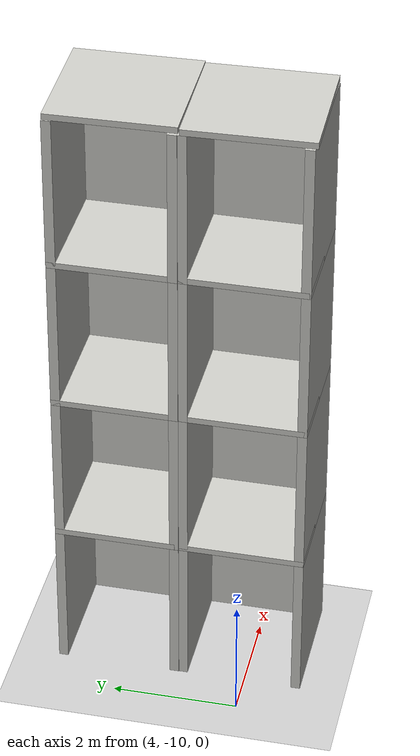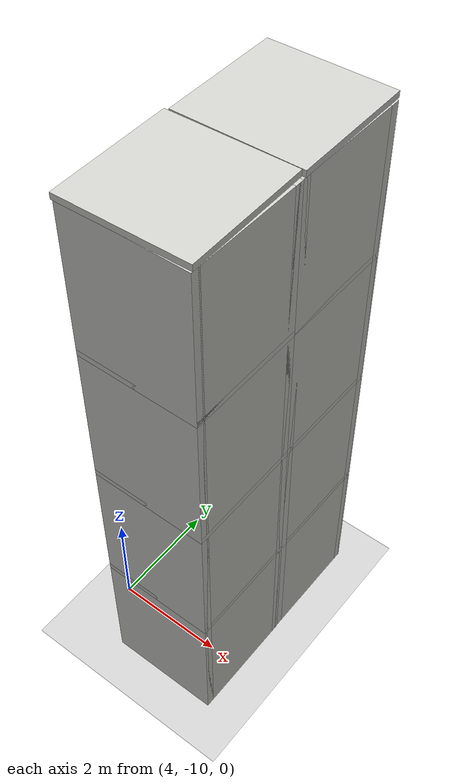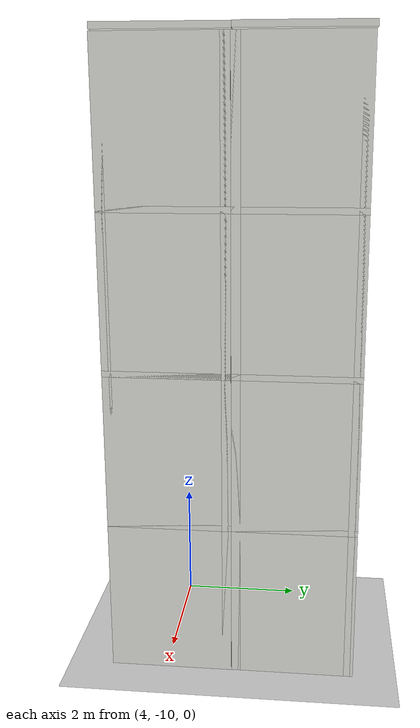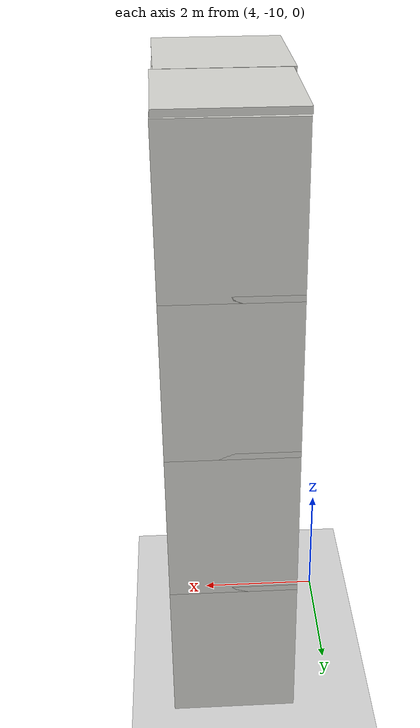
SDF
<sdf version="1.7">
 <world name="default">
  <model name="ground_plane">
   <static>1</static>
   <link name="link">
    <collision name="collision">
     <geometry><plane><normal>0 0 1</normal><size>100 100</size></plane></geometry>
     <surface>
      <contact><collide_bitmask>65535</collide_bitmask></contact>
      <friction><ode><mu>100</mu><mu2>50</mu2></ode></friction>
     </surface>
    </collision>
    <visual name="visual">
     <cast_shadows>0</cast_shadows>
     <geometry><plane><normal>0 0 1</normal><size>100 100</size></plane></geometry>
     <material>
      <script><uri>file://media/materials/scripts/gazebo.material</uri><name>Gazebo/Grey</name></script>
     </material>
    </visual>
   </link>
  </model>
  <model name="twin_4th_building_clone_clone_2">
   <link name="Floor_1">
    <pose>-1.9225 -0.6325 2.5 0 -0 0</pose>
    <visual name="Floor_1_Visual">
     <pose>0 0 0.05 0 -0 0</pose>
     <geometry><box><size>2 2 0.1</size></box></geometry>
     <material>
      <script><uri>file://media/materials/scripts/gazebo.material</uri><name>Gazebo/CeilingTiled</name></script>
      <ambient>1 1 1 1</ambient>
      <shader type="pixel"/>
      <emissive>0 0 0 1</emissive>
     </material>
     <meta><layer>1</layer></meta>
    </visual>
    <collision name="Floor_1_Collision">
     <pose>0 0 0.05 0 -0 0</pose>
     <geometry><box><size>2 2 0.1</size></box></geometry>
     <surface>
      <friction>
       <ode><mu>1</mu><mu2>1</mu2><fdir1>0 0 0</fdir1><slip1>0</slip1><slip2>0</slip2></ode>
       <torsional>
        <coefficient>1</coefficient>
        <patch_radius>0</patch_radius>
        <surface_radius>0</surface_radius>
        <use_patch_radius>1</use_patch_radius>
        <ode><slip>0</slip></ode>
       </torsional>
      </friction>
      <bounce><restitution_coefficient>0</restitution_coefficient><threshold>1e+06</threshold></bounce>
      <contact>
       <collide_without_contact>0</collide_without_contact>
       <collide_without_contact_bitmask>1</collide_without_contact_bitmask>
       <collide_bitmask>1</collide_bitmask>
       <ode>
        <soft_cfm>0</soft_cfm>
        <soft_erp>0.2</soft_erp>
        <kp>1e+13</kp>
        <kd>1</kd>
        <max_vel>0.01</max_vel>
        <min_depth>0</min_depth>
       </ode>
       <bullet>
        <split_impulse>1</split_impulse>
        <split_impulse_penetration_threshold>-0.01</split_impulse_penetration_threshold>
        <soft_cfm>0</soft_cfm>
        <soft_erp>0.2</soft_erp>
        <kp>1e+13</kp>
        <kd>1</kd>
       </bullet>
      </contact>
     </surface>
    </collision>
   </link>
   <link name="Floor_10">
    <pose>-1.9225 -0.6325 7.5 0 -0 0</pose>
    <visual name="Floor_10_Visual">
     <pose>0 0 0.05 0 -0 0</pose>
     <geometry><box><size>2 2 0.1</size></box></geometry>
     <material>
      <script><uri>file://media/materials/scripts/gazebo.material</uri><name>Gazebo/CeilingTiled</name></script>
      <ambient>1 1 1 1</ambient>
      <shader type="pixel"/>
      <emissive>0 0 0 1</emissive>
     </material>
     <meta><layer>3</layer></meta>
    </visual>
    <collision name="Floor_10_Collision">
     <pose>0 0 0.05 0 -0 0</pose>
     <geometry><box><size>2 2 0.1</size></box></geometry>
     <surface>
      <friction>
       <ode><mu>1</mu><mu2>1</mu2><fdir1>0 0 0</fdir1><slip1>0</slip1><slip2>0</slip2></ode>
       <torsional>
        <coefficient>1</coefficient>
        <patch_radius>0</patch_radius>
        <surface_radius>0</surface_radius>
        <use_patch_radius>1</use_patch_radius>
        <ode><slip>0</slip></ode>
       </torsional>
      </friction>
      <bounce><restitution_coefficient>0</restitution_coefficient><threshold>1e+06</threshold></bounce>
      <contact>
       <collide_without_contact>0</collide_without_contact>
       <collide_without_contact_bitmask>1</collide_without_contact_bitmask>
       <collide_bitmask>1</collide_bitmask>
       <ode>
        <soft_cfm>0</soft_cfm>
        <soft_erp>0.2</soft_erp>
        <kp>1e+13</kp>
        <kd>1</kd>
        <max_vel>0.01</max_vel>
        <min_depth>0</min_depth>
       </ode>
       <bullet>
        <split_impulse>1</split_impulse>
        <split_impulse_penetration_threshold>-0.01</split_impulse_penetration_threshold>
        <soft_cfm>0</soft_cfm>
        <soft_erp>0.2</soft_erp>
        <kp>1e+13</kp>
        <kd>1</kd>
       </bullet>
      </contact>
     </surface>
    </collision>
   </link>
   <link name="Floor_10_clone">
    <pose>-1.91647 -0.637292 10.0203 0 0 -1.55375</pose>
    <visual name="Floor_10_Visual">
     <pose>0 0 0.05 0 -0 0</pose>
     <geometry><box><size>2 2 0.1</size></box></geometry>
     <material>
      <script><uri>file://media/materials/scripts/gazebo.material</uri><name>Gazebo/CeilingTiled</name></script>
      <ambient>1 1 1 1</ambient>
      <shader type="pixel"/>
      <emissive>0 0 0 1</emissive>
     </material>
     <meta><layer>3</layer></meta>
    </visual>
    <collision name="Floor_10_Collision">
     <pose>0 0 0.05 0 -0 0</pose>
     <geometry><box><size>2 2 0.1</size></box></geometry>
     <surface>
      <friction>
       <ode><mu>1</mu><mu2>1</mu2><fdir1>0 0 0</fdir1><slip1>0</slip1><slip2>0</slip2></ode>
       <torsional>
        <coefficient>1</coefficient>
        <patch_radius>0</patch_radius>
        <surface_radius>0</surface_radius>
        <use_patch_radius>1</use_patch_radius>
        <ode><slip>0</slip></ode>
       </torsional>
      </friction>
      <bounce><restitution_coefficient>0</restitution_coefficient><threshold>1e+06</threshold></bounce>
      <contact>
       <collide_without_contact>0</collide_without_contact>
       <collide_without_contact_bitmask>1</collide_without_contact_bitmask>
       <collide_bitmask>1</collide_bitmask>
       <ode>
        <soft_cfm>0</soft_cfm>
        <soft_erp>0.2</soft_erp>
        <kp>1e+13</kp>
        <kd>1</kd>
        <max_vel>0.01</max_vel>
        <min_depth>0</min_depth>
       </ode>
       <bullet>
        <split_impulse>1</split_impulse>
        <split_impulse_penetration_threshold>-0.01</split_impulse_penetration_threshold>
        <soft_cfm>0</soft_cfm>
        <soft_erp>0.2</soft_erp>
        <kp>1e+13</kp>
        <kd>1</kd>
       </bullet>
      </contact>
     </surface>
    </collision>
   </link>
   <link name="Floor_10_clone_clone">
    <pose>-3.93376 -0.629613 10.0203 0 0 -3.11619</pose>
    <visual name="Floor_10_Visual">
     <pose>0 0 0.05 0 -0 0</pose>
     <geometry><box><size>2 2 0.1</size></box></geometry>
     <material>
      <script><uri>file://media/materials/scripts/gazebo.material</uri><name>Gazebo/CeilingTiled</name></script>
      <ambient>1 1 1 1</ambient>
      <shader type="pixel"/>
      <emissive>0 0 0 1</emissive>
     </material>
     <meta><layer>3</layer></meta>
    </visual>
    <collision name="Floor_10_Collision">
     <pose>0 0 0.05 0 -0 0</pose>
     <geometry><box><size>2 2 0.1</size></box></geometry>
     <surface>
      <friction>
       <ode><mu>1</mu><mu2>1</mu2><fdir1>0 0 0</fdir1><slip1>0</slip1><slip2>0</slip2></ode>
       <torsional>
        <coefficient>1</coefficient>
        <patch_radius>0</patch_radius>
        <surface_radius>0</surface_radius>
        <use_patch_radius>1</use_patch_radius>
        <ode><slip>0</slip></ode>
       </torsional>
      </friction>
      <bounce><restitution_coefficient>0</restitution_coefficient><threshold>1e+06</threshold></bounce>
      <contact>
       <collide_without_contact>0</collide_without_contact>
       <collide_without_contact_bitmask>1</collide_without_contact_bitmask>
       <collide_bitmask>1</collide_bitmask>
       <ode>
        <soft_cfm>0</soft_cfm>
        <soft_erp>0.2</soft_erp>
        <kp>1e+13</kp>
        <kd>1</kd>
        <max_vel>0.01</max_vel>
        <min_depth>0</min_depth>
       </ode>
       <bullet>
        <split_impulse>1</split_impulse>
        <split_impulse_penetration_threshold>-0.01</split_impulse_penetration_threshold>
        <soft_cfm>0</soft_cfm>
        <soft_erp>0.2</soft_erp>
        <kp>1e+13</kp>
        <kd>1</kd>
       </bullet>
      </contact>
     </surface>
    </collision>
   </link>
   <link name="Floor_9">
    <pose>-1.9225 -0.6325 5 0 -0 0</pose>
    <visual name="Floor_9_Visual">
     <pose>0 0 0.05 0 -0 0</pose>
     <geometry><box><size>2 2 0.1</size></box></geometry>
     <material>
      <script><uri>file://media/materials/scripts/gazebo.material</uri><name>Gazebo/CeilingTiled</name></script>
      <ambient>1 1 1 1</ambient>
      <shader type="pixel"/>
      <emissive>0 0 0 1</emissive>
     </material>
     <meta><layer>2</layer></meta>
    </visual>
    <collision name="Floor_9_Collision">
     <pose>0 0 0.05 0 -0 0</pose>
     <geometry><box><size>2 2 0.1</size></box></geometry>
     <surface>
      <friction>
       <ode><mu>1</mu><mu2>1</mu2><fdir1>0 0 0</fdir1><slip1>0</slip1><slip2>0</slip2></ode>
       <torsional>
        <coefficient>1</coefficient>
        <patch_radius>0</patch_radius>
        <surface_radius>0</surface_radius>
        <use_patch_radius>1</use_patch_radius>
        <ode><slip>0</slip></ode>
       </torsional>
      </friction>
      <bounce><restitution_coefficient>0</restitution_coefficient><threshold>1e+06</threshold></bounce>
      <contact>
       <collide_without_contact>0</collide_without_contact>
       <collide_without_contact_bitmask>1</collide_without_contact_bitmask>
       <collide_bitmask>1</collide_bitmask>
       <ode>
        <soft_cfm>0</soft_cfm>
        <soft_erp>0.2</soft_erp>
        <kp>1e+13</kp>
        <kd>1</kd>
        <max_vel>0.01</max_vel>
        <min_depth>0</min_depth>
       </ode>
       <bullet>
        <split_impulse>1</split_impulse>
        <split_impulse_penetration_threshold>-0.01</split_impulse_penetration_threshold>
        <soft_cfm>0</soft_cfm>
        <soft_erp>0.2</soft_erp>
        <kp>1e+13</kp>
        <kd>1</kd>
       </bullet>
      </contact>
     </surface>
    </collision>
   </link>
   <link name="Wall_13">
    <pose>-2.8475 -0.6325 0 0 0 -1.5708</pose>
    <visual name="Wall_13_Visual">
     <pose>0 0 1.25 0 -0 0</pose>
     <geometry><box><size>2 0.15 2.5</size></box></geometry>
     <material>
      <script><uri>file://media/materials/scripts/gazebo.material</uri><name>Gazebo/CeilingTiled</name></script>
      <ambient>1 1 1 1</ambient>
      <shader type="pixel"/>
      <emissive>0 0 0 1</emissive>
     </material>
     <meta><layer>0</layer></meta>
    </visual>
    <collision name="Wall_13_Collision">
     <pose>0 0 1.25 0 -0 0</pose>
     <geometry><box><size>2 0.15 2.5</size></box></geometry>
     <surface>
      <friction>
       <ode><mu>1</mu><mu2>1</mu2><fdir1>0 0 0</fdir1><slip1>0</slip1><slip2>0</slip2></ode>
       <torsional>
        <coefficient>1</coefficient>
        <patch_radius>0</patch_radius>
        <surface_radius>0</surface_radius>
        <use_patch_radius>1</use_patch_radius>
        <ode><slip>0</slip></ode>
       </torsional>
      </friction>
      <bounce><restitution_coefficient>0</restitution_coefficient><threshold>1e+06</threshold></bounce>
      <contact>
       <collide_without_contact>0</collide_without_contact>
       <collide_without_contact_bitmask>1</collide_without_contact_bitmask>
       <collide_bitmask>1</collide_bitmask>
       <ode>
        <soft_cfm>0</soft_cfm>
        <soft_erp>0.2</soft_erp>
        <kp>1e+13</kp>
        <kd>1</kd>
        <max_vel>0.01</max_vel>
        <min_depth>0</min_depth>
       </ode>
       <bullet>
        <split_impulse>1</split_impulse>
        <split_impulse_penetration_threshold>-0.01</split_impulse_penetration_threshold>
        <soft_cfm>0</soft_cfm>
        <soft_erp>0.2</soft_erp>
        <kp>1e+13</kp>
        <kd>1</kd>
       </bullet>
      </contact>
     </surface>
    </collision>
   </link>
   <link name="Wall_14">
    <pose>-1.9225 -1.5575 0 0 -0 0</pose>
    <visual name="Wall_14_Visual">
     <pose>0 0 1.25 0 -0 0</pose>
     <geometry><box><size>2 0.15 2.5</size></box></geometry>
     <material>
      <script><uri>file://media/materials/scripts/gazebo.material</uri><name>Gazebo/CeilingTiled</name></script>
      <ambient>1 1 1 1</ambient>
      <shader type="pixel"/>
     </material>
     <meta><layer>0</layer></meta>
    </visual>
    <collision name="Wall_14_Collision">
     <pose>0 0 1.25 0 -0 0</pose>
     <geometry><box><size>2 0.15 2.5</size></box></geometry>
     <surface>
      <friction>
       <ode><mu>1</mu><mu2>1</mu2><fdir1>0 0 0</fdir1><slip1>0</slip1><slip2>0</slip2></ode>
       <torsional>
        <coefficient>1</coefficient>
        <patch_radius>0</patch_radius>
        <surface_radius>0</surface_radius>
        <use_patch_radius>1</use_patch_radius>
        <ode><slip>0</slip></ode>
       </torsional>
      </friction>
      <bounce><restitution_coefficient>0</restitution_coefficient><threshold>1e+06</threshold></bounce>
      <contact>
       <collide_without_contact>0</collide_without_contact>
       <collide_without_contact_bitmask>1</collide_without_contact_bitmask>
       <collide_bitmask>1</collide_bitmask>
       <ode>
        <soft_cfm>0</soft_cfm>
        <soft_erp>0.2</soft_erp>
        <kp>1e+13</kp>
        <kd>1</kd>
        <max_vel>0.01</max_vel>
        <min_depth>0</min_depth>
       </ode>
       <bullet>
        <split_impulse>1</split_impulse>
        <split_impulse_penetration_threshold>-0.01</split_impulse_penetration_threshold>
        <soft_cfm>0</soft_cfm>
        <soft_erp>0.2</soft_erp>
        <kp>1e+13</kp>
        <kd>1</kd>
       </bullet>
      </contact>
     </surface>
    </collision>
   </link>
   <link name="Wall_15">
    <pose>-0.9975 -0.6325 0 0 -0 1.5708</pose>
    <visual name="Wall_15_Visual">
     <pose>0 0 1.25 0 -0 0</pose>
     <geometry><box><size>2 0.15 2.5</size></box></geometry>
     <material>
      <script><uri>file://media/materials/scripts/gazebo.material</uri><name>Gazebo/CeilingTiled</name></script>
      <ambient>1 1 1 1</ambient>
      <shader type="pixel"/>
     </material>
     <meta><layer>0</layer></meta>
    </visual>
    <collision name="Wall_15_Collision">
     <pose>0 0 1.25 0 -0 0</pose>
     <geometry><box><size>2 0.15 2.5</size></box></geometry>
     <surface>
      <friction>
       <ode><mu>1</mu><mu2>1</mu2><fdir1>0 0 0</fdir1><slip1>0</slip1><slip2>0</slip2></ode>
       <torsional>
        <coefficient>1</coefficient>
        <patch_radius>0</patch_radius>
        <surface_radius>0</surface_radius>
        <use_patch_radius>1</use_patch_radius>
        <ode><slip>0</slip></ode>
       </torsional>
      </friction>
      <bounce><restitution_coefficient>0</restitution_coefficient><threshold>1e+06</threshold></bounce>
      <contact>
       <collide_without_contact>0</collide_without_contact>
       <collide_without_contact_bitmask>1</collide_without_contact_bitmask>
       <collide_bitmask>1</collide_bitmask>
       <ode>
        <soft_cfm>0</soft_cfm>
        <soft_erp>0.2</soft_erp>
        <kp>1e+13</kp>
        <kd>1</kd>
        <max_vel>0.01</max_vel>
        <min_depth>0</min_depth>
       </ode>
       <bullet>
        <split_impulse>1</split_impulse>
        <split_impulse_penetration_threshold>-0.01</split_impulse_penetration_threshold>
        <soft_cfm>0</soft_cfm>
        <soft_erp>0.2</soft_erp>
        <kp>1e+13</kp>
        <kd>1</kd>
       </bullet>
      </contact>
     </surface>
    </collision>
   </link>
   <link name="Wall_17">
    <pose>-2.8475 -0.6325 2.5 0 0 -1.5708</pose>
    <visual name="Wall_17_Visual">
     <pose>0 0 1.25 0 -0 0</pose>
     <geometry><box><size>2 0.15 2.5</size></box></geometry>
     <material>
      <script><uri>file://media/materials/scripts/gazebo.material</uri><name>Gazebo/CeilingTiled</name></script>
      <ambient>1 1 1 1</ambient>
      <shader type="pixel"/>
      <emissive>0 0 0 1</emissive>
     </material>
     <meta><layer>1</layer></meta>
    </visual>
    <collision name="Wall_17_Collision">
     <pose>0 0 1.25 0 -0 0</pose>
     <geometry><box><size>2 0.15 2.5</size></box></geometry>
     <surface>
      <friction>
       <ode><mu>1</mu><mu2>1</mu2><fdir1>0 0 0</fdir1><slip1>0</slip1><slip2>0</slip2></ode>
       <torsional>
        <coefficient>1</coefficient>
        <patch_radius>0</patch_radius>
        <surface_radius>0</surface_radius>
        <use_patch_radius>1</use_patch_radius>
        <ode><slip>0</slip></ode>
       </torsional>
      </friction>
      <bounce><restitution_coefficient>0</restitution_coefficient><threshold>1e+06</threshold></bounce>
      <contact>
       <collide_without_contact>0</collide_without_contact>
       <collide_without_contact_bitmask>1</collide_without_contact_bitmask>
       <collide_bitmask>1</collide_bitmask>
       <ode>
        <soft_cfm>0</soft_cfm>
        <soft_erp>0.2</soft_erp>
        <kp>1e+13</kp>
        <kd>1</kd>
        <max_vel>0.01</max_vel>
        <min_depth>0</min_depth>
       </ode>
       <bullet>
        <split_impulse>1</split_impulse>
        <split_impulse_penetration_threshold>-0.01</split_impulse_penetration_threshold>
        <soft_cfm>0</soft_cfm>
        <soft_erp>0.2</soft_erp>
        <kp>1e+13</kp>
        <kd>1</kd>
       </bullet>
      </contact>
     </surface>
    </collision>
   </link>
   <link name="Wall_18">
    <pose>-1.9225 -1.5575 2.5 0 -0 0</pose>
    <visual name="Wall_18_Visual">
     <pose>0 0 1.25 0 -0 0</pose>
     <geometry><box><size>2 0.15 2.5</size></box></geometry>
     <material>
      <script><uri>file://media/materials/scripts/gazebo.material</uri><name>Gazebo/CeilingTiled</name></script>
      <ambient>1 1 1 1</ambient>
      <shader type="pixel"/>
      <emissive>0 0 0 1</emissive>
     </material>
     <meta><layer>1</layer></meta>
    </visual>
    <collision name="Wall_18_Collision">
     <pose>0 0 1.25 0 -0 0</pose>
     <geometry><box><size>2 0.15 2.5</size></box></geometry>
     <surface>
      <friction>
       <ode><mu>1</mu><mu2>1</mu2><fdir1>0 0 0</fdir1><slip1>0</slip1><slip2>0</slip2></ode>
       <torsional>
        <coefficient>1</coefficient>
        <patch_radius>0</patch_radius>
        <surface_radius>0</surface_radius>
        <use_patch_radius>1</use_patch_radius>
        <ode><slip>0</slip></ode>
       </torsional>
      </friction>
      <bounce><restitution_coefficient>0</restitution_coefficient><threshold>1e+06</threshold></bounce>
      <contact>
       <collide_without_contact>0</collide_without_contact>
       <collide_without_contact_bitmask>1</collide_without_contact_bitmask>
       <collide_bitmask>1</collide_bitmask>
       <ode>
        <soft_cfm>0</soft_cfm>
        <soft_erp>0.2</soft_erp>
        <kp>1e+13</kp>
        <kd>1</kd>
        <max_vel>0.01</max_vel>
        <min_depth>0</min_depth>
       </ode>
       <bullet>
        <split_impulse>1</split_impulse>
        <split_impulse_penetration_threshold>-0.01</split_impulse_penetration_threshold>
        <soft_cfm>0</soft_cfm>
        <soft_erp>0.2</soft_erp>
        <kp>1e+13</kp>
        <kd>1</kd>
       </bullet>
      </contact>
     </surface>
    </collision>
   </link>
   <link name="Wall_19">
    <pose>-0.9975 -0.6325 2.5 0 -0 1.5708</pose>
    <visual name="Wall_19_Visual">
     <pose>0 0 1.25 0 -0 0</pose>
     <geometry><box><size>2 0.15 2.5</size></box></geometry>
     <material>
      <script><uri>file://media/materials/scripts/gazebo.material</uri><name>Gazebo/CeilingTiled</name></script>
      <ambient>1 1 1 1</ambient>
      <shader type="pixel"/>
     </material>
     <meta><layer>1</layer></meta>
    </visual>
    <collision name="Wall_19_Collision">
     <pose>0 0 1.25 0 -0 0</pose>
     <geometry><box><size>2 0.15 2.5</size></box></geometry>
     <surface>
      <friction>
       <ode><mu>1</mu><mu2>1</mu2><fdir1>0 0 0</fdir1><slip1>0</slip1><slip2>0</slip2></ode>
       <torsional>
        <coefficient>1</coefficient>
        <patch_radius>0</patch_radius>
        <surface_radius>0</surface_radius>
        <use_patch_radius>1</use_patch_radius>
        <ode><slip>0</slip></ode>
       </torsional>
      </friction>
      <bounce><restitution_coefficient>0</restitution_coefficient><threshold>1e+06</threshold></bounce>
      <contact>
       <collide_without_contact>0</collide_without_contact>
       <collide_without_contact_bitmask>1</collide_without_contact_bitmask>
       <collide_bitmask>1</collide_bitmask>
       <ode>
        <soft_cfm>0</soft_cfm>
        <soft_erp>0.2</soft_erp>
        <kp>1e+13</kp>
        <kd>1</kd>
        <max_vel>0.01</max_vel>
        <min_depth>0</min_depth>
       </ode>
       <bullet>
        <split_impulse>1</split_impulse>
        <split_impulse_penetration_threshold>-0.01</split_impulse_penetration_threshold>
        <soft_cfm>0</soft_cfm>
        <soft_erp>0.2</soft_erp>
        <kp>1e+13</kp>
        <kd>1</kd>
       </bullet>
      </contact>
     </surface>
    </collision>
   </link>
   <link name="Wall_40">
    <pose>-2.8475 -0.6325 5 0 0 -1.5708</pose>
    <visual name="Wall_40_Visual">
     <pose>0 0 1.25 0 -0 0</pose>
     <geometry><box><size>2 0.15 2.5</size></box></geometry>
     <material>
      <script><uri>file://media/materials/scripts/gazebo.material</uri><name>Gazebo/CeilingTiled</name></script>
      <ambient>1 1 1 1</ambient>
      <shader type="pixel"/>
      <emissive>0 0 0 1</emissive>
     </material>
     <meta><layer>2</layer></meta>
    </visual>
    <collision name="Wall_40_Collision">
     <pose>0 0 1.25 0 -0 0</pose>
     <geometry><box><size>2 0.15 2.5</size></box></geometry>
     <surface>
      <friction>
       <ode><mu>1</mu><mu2>1</mu2><fdir1>0 0 0</fdir1><slip1>0</slip1><slip2>0</slip2></ode>
       <torsional>
        <coefficient>1</coefficient>
        <patch_radius>0</patch_radius>
        <surface_radius>0</surface_radius>
        <use_patch_radius>1</use_patch_radius>
        <ode><slip>0</slip></ode>
       </torsional>
      </friction>
      <bounce><restitution_coefficient>0</restitution_coefficient><threshold>1e+06</threshold></bounce>
      <contact>
       <collide_without_contact>0</collide_without_contact>
       <collide_without_contact_bitmask>1</collide_without_contact_bitmask>
       <collide_bitmask>1</collide_bitmask>
       <ode>
        <soft_cfm>0</soft_cfm>
        <soft_erp>0.2</soft_erp>
        <kp>1e+13</kp>
        <kd>1</kd>
        <max_vel>0.01</max_vel>
        <min_depth>0</min_depth>
       </ode>
       <bullet>
        <split_impulse>1</split_impulse>
        <split_impulse_penetration_threshold>-0.01</split_impulse_penetration_threshold>
        <soft_cfm>0</soft_cfm>
        <soft_erp>0.2</soft_erp>
        <kp>1e+13</kp>
        <kd>1</kd>
       </bullet>
      </contact>
     </surface>
    </collision>
   </link>
   <link name="Wall_41">
    <pose>-1.9225 -1.5575 5 0 -0 0</pose>
    <visual name="Wall_41_Visual">
     <pose>0 0 1.25 0 -0 0</pose>
     <geometry><box><size>2 0.15 2.5</size></box></geometry>
     <material>
      <script><uri>file://media/materials/scripts/gazebo.material</uri><name>Gazebo/CeilingTiled</name></script>
      <ambient>1 1 1 1</ambient>
      <shader type="pixel"/>
      <emissive>0 0 0 1</emissive>
     </material>
     <meta><layer>2</layer></meta>
    </visual>
    <collision name="Wall_41_Collision">
     <pose>0 0 1.25 0 -0 0</pose>
     <geometry><box><size>2 0.15 2.5</size></box></geometry>
     <surface>
      <friction>
       <ode><mu>1</mu><mu2>1</mu2><fdir1>0 0 0</fdir1><slip1>0</slip1><slip2>0</slip2></ode>
       <torsional>
        <coefficient>1</coefficient>
        <patch_radius>0</patch_radius>
        <surface_radius>0</surface_radius>
        <use_patch_radius>1</use_patch_radius>
        <ode><slip>0</slip></ode>
       </torsional>
      </friction>
      <bounce><restitution_coefficient>0</restitution_coefficient><threshold>1e+06</threshold></bounce>
      <contact>
       <collide_without_contact>0</collide_without_contact>
       <collide_without_contact_bitmask>1</collide_without_contact_bitmask>
       <collide_bitmask>1</collide_bitmask>
       <ode>
        <soft_cfm>0</soft_cfm>
        <soft_erp>0.2</soft_erp>
        <kp>1e+13</kp>
        <kd>1</kd>
        <max_vel>0.01</max_vel>
        <min_depth>0</min_depth>
       </ode>
       <bullet>
        <split_impulse>1</split_impulse>
        <split_impulse_penetration_threshold>-0.01</split_impulse_penetration_threshold>
        <soft_cfm>0</soft_cfm>
        <soft_erp>0.2</soft_erp>
        <kp>1e+13</kp>
        <kd>1</kd>
       </bullet>
      </contact>
     </surface>
    </collision>
   </link>
   <link name="Wall_42">
    <pose>-0.9975 -0.6325 5 0 -0 1.5708</pose>
    <visual name="Wall_42_Visual">
     <pose>0 0 1.25 0 -0 0</pose>
     <geometry><box><size>2 0.15 2.5</size></box></geometry>
     <material>
      <script><uri>file://media/materials/scripts/gazebo.material</uri><name>Gazebo/CeilingTiled</name></script>
      <ambient>1 1 1 1</ambient>
      <shader type="pixel"/>
     </material>
     <meta><layer>2</layer></meta>
    </visual>
    <collision name="Wall_42_Collision">
     <pose>0 0 1.25 0 -0 0</pose>
     <geometry><box><size>2 0.15 2.5</size></box></geometry>
     <surface>
      <friction>
       <ode><mu>1</mu><mu2>1</mu2><fdir1>0 0 0</fdir1><slip1>0</slip1><slip2>0</slip2></ode>
       <torsional>
        <coefficient>1</coefficient>
        <patch_radius>0</patch_radius>
        <surface_radius>0</surface_radius>
        <use_patch_radius>1</use_patch_radius>
        <ode><slip>0</slip></ode>
       </torsional>
      </friction>
      <bounce><restitution_coefficient>0</restitution_coefficient><threshold>1e+06</threshold></bounce>
      <contact>
       <collide_without_contact>0</collide_without_contact>
       <collide_without_contact_bitmask>1</collide_without_contact_bitmask>
       <collide_bitmask>1</collide_bitmask>
       <ode>
        <soft_cfm>0</soft_cfm>
        <soft_erp>0.2</soft_erp>
        <kp>1e+13</kp>
        <kd>1</kd>
        <max_vel>0.01</max_vel>
        <min_depth>0</min_depth>
       </ode>
       <bullet>
        <split_impulse>1</split_impulse>
        <split_impulse_penetration_threshold>-0.01</split_impulse_penetration_threshold>
        <soft_cfm>0</soft_cfm>
        <soft_erp>0.2</soft_erp>
        <kp>1e+13</kp>
        <kd>1</kd>
       </bullet>
      </contact>
     </surface>
    </collision>
   </link>
   <link name="Wall_43">
    <pose>-2.8475 -0.6325 7.5 0 0 -1.5708</pose>
    <visual name="Wall_43_Visual">
     <pose>0 0 1.25 0 -0 0</pose>
     <geometry><box><size>2 0.15 2.5</size></box></geometry>
     <material>
      <script><uri>file://media/materials/scripts/gazebo.material</uri><name>Gazebo/CeilingTiled</name></script>
      <ambient>1 1 1 1</ambient>
      <shader type="pixel"/>
      <emissive>0 0 0 1</emissive>
     </material>
     <meta><layer>3</layer></meta>
    </visual>
    <collision name="Wall_43_Collision">
     <pose>0 0 1.25 0 -0 0</pose>
     <geometry><box><size>2 0.15 2.5</size></box></geometry>
     <surface>
      <friction>
       <ode><mu>1</mu><mu2>1</mu2><fdir1>0 0 0</fdir1><slip1>0</slip1><slip2>0</slip2></ode>
       <torsional>
        <coefficient>1</coefficient>
        <patch_radius>0</patch_radius>
        <surface_radius>0</surface_radius>
        <use_patch_radius>1</use_patch_radius>
        <ode><slip>0</slip></ode>
       </torsional>
      </friction>
      <bounce><restitution_coefficient>0</restitution_coefficient><threshold>1e+06</threshold></bounce>
      <contact>
       <collide_without_contact>0</collide_without_contact>
       <collide_without_contact_bitmask>1</collide_without_contact_bitmask>
       <collide_bitmask>1</collide_bitmask>
       <ode>
        <soft_cfm>0</soft_cfm>
        <soft_erp>0.2</soft_erp>
        <kp>1e+13</kp>
        <kd>1</kd>
        <max_vel>0.01</max_vel>
        <min_depth>0</min_depth>
       </ode>
       <bullet>
        <split_impulse>1</split_impulse>
        <split_impulse_penetration_threshold>-0.01</split_impulse_penetration_threshold>
        <soft_cfm>0</soft_cfm>
        <soft_erp>0.2</soft_erp>
        <kp>1e+13</kp>
        <kd>1</kd>
       </bullet>
      </contact>
     </surface>
    </collision>
   </link>
   <link name="Wall_44">
    <pose>-1.9225 -1.5575 7.5 0 -0 0</pose>
    <visual name="Wall_44_Visual">
     <pose>0 0 1.25 0 -0 0</pose>
     <geometry><box><size>2 0.15 2.5</size></box></geometry>
     <material>
      <script><uri>file://media/materials/scripts/gazebo.material</uri><name>Gazebo/CeilingTiled</name></script>
      <ambient>1 1 1 1</ambient>
      <shader type="pixel"/>
      <emissive>0 0 0 1</emissive>
     </material>
     <meta><layer>3</layer></meta>
    </visual>
    <collision name="Wall_44_Collision">
     <pose>0 0 1.25 0 -0 0</pose>
     <geometry><box><size>2 0.15 2.5</size></box></geometry>
     <surface>
      <friction>
       <ode><mu>1</mu><mu2>1</mu2><fdir1>0 0 0</fdir1><slip1>0</slip1><slip2>0</slip2></ode>
       <torsional>
        <coefficient>1</coefficient>
        <patch_radius>0</patch_radius>
        <surface_radius>0</surface_radius>
        <use_patch_radius>1</use_patch_radius>
        <ode><slip>0</slip></ode>
       </torsional>
      </friction>
      <bounce><restitution_coefficient>0</restitution_coefficient><threshold>1e+06</threshold></bounce>
      <contact>
       <collide_without_contact>0</collide_without_contact>
       <collide_without_contact_bitmask>1</collide_without_contact_bitmask>
       <collide_bitmask>1</collide_bitmask>
       <ode>
        <soft_cfm>0</soft_cfm>
        <soft_erp>0.2</soft_erp>
        <kp>1e+13</kp>
        <kd>1</kd>
        <max_vel>0.01</max_vel>
        <min_depth>0</min_depth>
       </ode>
       <bullet>
        <split_impulse>1</split_impulse>
        <split_impulse_penetration_threshold>-0.01</split_impulse_penetration_threshold>
        <soft_cfm>0</soft_cfm>
        <soft_erp>0.2</soft_erp>
        <kp>1e+13</kp>
        <kd>1</kd>
       </bullet>
      </contact>
     </surface>
    </collision>
   </link>
   <link name="Wall_45">
    <pose>-0.9975 -0.6325 7.5 0 -0 1.5708</pose>
    <visual name="Wall_45_Visual">
     <pose>0 0 1.25 0 -0 0</pose>
     <geometry><box><size>2 0.15 2.5</size></box></geometry>
     <material>
      <script><uri>file://media/materials/scripts/gazebo.material</uri><name>Gazebo/CeilingTiled</name></script>
      <ambient>1 1 1 1</ambient>
      <shader type="pixel"/>
     </material>
     <meta><layer>3</layer></meta>
    </visual>
    <collision name="Wall_45_Collision">
     <pose>0 0 1.25 0 -0 0</pose>
     <geometry><box><size>2 0.15 2.5</size></box></geometry>
     <surface>
      <friction>
       <ode><mu>1</mu><mu2>1</mu2><fdir1>0 0 0</fdir1><slip1>0</slip1><slip2>0</slip2></ode>
       <torsional>
        <coefficient>1</coefficient>
        <patch_radius>0</patch_radius>
        <surface_radius>0</surface_radius>
        <use_patch_radius>1</use_patch_radius>
        <ode><slip>0</slip></ode>
       </torsional>
      </friction>
      <bounce><restitution_coefficient>0</restitution_coefficient><threshold>1e+06</threshold></bounce>
      <contact>
       <collide_without_contact>0</collide_without_contact>
       <collide_without_contact_bitmask>1</collide_without_contact_bitmask>
       <collide_bitmask>1</collide_bitmask>
       <ode>
        <soft_cfm>0</soft_cfm>
        <soft_erp>0.2</soft_erp>
        <kp>1e+13</kp>
        <kd>1</kd>
        <max_vel>0.01</max_vel>
        <min_depth>0</min_depth>
       </ode>
       <bullet>
        <split_impulse>1</split_impulse>
        <split_impulse_penetration_threshold>-0.01</split_impulse_penetration_threshold>
        <soft_cfm>0</soft_cfm>
        <soft_erp>0.2</soft_erp>
        <kp>1e+13</kp>
        <kd>1</kd>
       </bullet>
      </contact>
     </surface>
    </collision>
   </link>
   <model name="4th_building">
    <pose>-1.99386 -0.00682 0 0 -0 0</pose>
    <link name="Floor_1">
     <collision name="Floor_1_Collision">
      <geometry><box><size>2 2 0.1</size></box></geometry>
      <pose>0 0 0.05 0 -0 0</pose>
     </collision>
     <visual name="Floor_1_Visual">
      <pose>0 0 0.05 0 -0 0</pose>
      <geometry><box><size>2 2 0.1</size></box></geometry>
      <material>
       <script><uri>file://media/materials/scripts/gazebo.material</uri><name>Gazebo/CeilingTiled</name></script>
       <ambient>1 1 1 1</ambient>
      </material>
      <meta><layer>1</layer></meta>
     </visual>
     <pose>-1.9225 -0.6325 2.5 0 -0 0</pose>
    </link>
    <link name="Floor_10">
     <collision name="Floor_10_Collision">
      <geometry><box><size>2 2 0.1</size></box></geometry>
      <pose>0 0 0.05 0 -0 0</pose>
     </collision>
     <visual name="Floor_10_Visual">
      <pose>0 0 0.05 0 -0 0</pose>
      <geometry><box><size>2 2 0.1</size></box></geometry>
      <material>
       <script><uri>file://media/materials/scripts/gazebo.material</uri><name>Gazebo/CeilingTiled</name></script>
       <ambient>1 1 1 1</ambient>
      </material>
      <meta><layer>3</layer></meta>
     </visual>
     <pose>-1.9225 -0.6325 7.5 0 -0 0</pose>
    </link>
    <link name="Floor_9">
     <collision name="Floor_9_Collision">
      <geometry><box><size>2 2 0.1</size></box></geometry>
      <pose>0 0 0.05 0 -0 0</pose>
     </collision>
     <visual name="Floor_9_Visual">
      <pose>0 0 0.05 0 -0 0</pose>
      <geometry><box><size>2 2 0.1</size></box></geometry>
      <material>
       <script><uri>file://media/materials/scripts/gazebo.material</uri><name>Gazebo/CeilingTiled</name></script>
       <ambient>1 1 1 1</ambient>
      </material>
      <meta><layer>2</layer></meta>
     </visual>
     <pose>-1.9225 -0.6325 5 0 -0 0</pose>
    </link>
    <link name="Wall_13">
     <collision name="Wall_13_Collision">
      <geometry><box><size>2 0.15 2.5</size></box></geometry>
      <pose>0 0 1.25 0 -0 0</pose>
     </collision>
     <visual name="Wall_13_Visual">
      <pose>0 0 1.25 0 -0 0</pose>
      <geometry><box><size>2 0.15 2.5</size></box></geometry>
      <material>
       <script><uri>file://media/materials/scripts/gazebo.material</uri><name>Gazebo/CeilingTiled</name></script>
       <ambient>1 1 1 1</ambient>
      </material>
      <meta><layer>0</layer></meta>
     </visual>
     <pose>-2.8475 -0.6325 0 0 -0 -1.5708</pose>
    </link>
    <link name="Wall_14">
     <collision name="Wall_14_Collision">
      <geometry><box><size>2 0.15 2.5</size></box></geometry>
      <pose>0 0 1.25 0 -0 0</pose>
     </collision>
     <visual name="Wall_14_Visual">
      <pose>0 0 1.25 0 -0 0</pose>
      <geometry><box><size>2 0.15 2.5</size></box></geometry>
      <material>
       <script><uri>file://media/materials/scripts/gazebo.material</uri><name>Gazebo/CeilingTiled</name></script>
       <ambient>1 1 1 1</ambient>
      </material>
      <meta><layer>0</layer></meta>
     </visual>
     <pose>-1.9225 -1.5575 0 0 -0 0</pose>
    </link>
    <link name="Wall_15">
     <collision name="Wall_15_Collision">
      <geometry><box><size>2 0.15 2.5</size></box></geometry>
      <pose>0 0 1.25 0 -0 0</pose>
     </collision>
     <visual name="Wall_15_Visual">
      <pose>0 0 1.25 0 -0 0</pose>
      <geometry><box><size>2 0.15 2.5</size></box></geometry>
      <material>
       <script><uri>file://media/materials/scripts/gazebo.material</uri><name>Gazebo/CeilingTiled</name></script>
       <ambient>1 1 1 1</ambient>
      </material>
      <meta><layer>0</layer></meta>
     </visual>
     <pose>-0.9975 -0.6325 0 0 -0 1.5708</pose>
    </link>
    <link name="Wall_17">
     <collision name="Wall_17_Collision">
      <geometry><box><size>2 0.15 2.5</size></box></geometry>
      <pose>0 0 1.25 0 -0 0</pose>
     </collision>
     <visual name="Wall_17_Visual">
      <pose>0 0 1.25 0 -0 0</pose>
      <geometry><box><size>2 0.15 2.5</size></box></geometry>
      <material>
       <script><uri>file://media/materials/scripts/gazebo.material</uri><name>Gazebo/CeilingTiled</name></script>
       <ambient>1 1 1 1</ambient>
      </material>
      <meta><layer>1</layer></meta>
     </visual>
     <pose>-2.8475 -0.6325 2.5 0 -0 -1.5708</pose>
    </link>
    <link name="Wall_18">
     <collision name="Wall_18_Collision">
      <geometry><box><size>2 0.15 2.5</size></box></geometry>
      <pose>0 0 1.25 0 -0 0</pose>
     </collision>
     <visual name="Wall_18_Visual">
      <pose>0 0 1.25 0 -0 0</pose>
      <geometry><box><size>2 0.15 2.5</size></box></geometry>
      <material>
       <script><uri>file://media/materials/scripts/gazebo.material</uri><name>Gazebo/CeilingTiled</name></script>
       <ambient>1 1 1 1</ambient>
      </material>
      <meta><layer>1</layer></meta>
     </visual>
     <pose>-1.9225 -1.5575 2.5 0 -0 0</pose>
    </link>
    <link name="Wall_19">
     <collision name="Wall_19_Collision">
      <geometry><box><size>2 0.15 2.5</size></box></geometry>
      <pose>0 0 1.25 0 -0 0</pose>
     </collision>
     <visual name="Wall_19_Visual">
      <pose>0 0 1.25 0 -0 0</pose>
      <geometry><box><size>2 0.15 2.5</size></box></geometry>
      <material>
       <script><uri>file://media/materials/scripts/gazebo.material</uri><name>Gazebo/CeilingTiled</name></script>
       <ambient>1 1 1 1</ambient>
      </material>
      <meta><layer>1</layer></meta>
     </visual>
     <pose>-0.9975 -0.6325 2.5 0 -0 1.5708</pose>
    </link>
    <link name="Wall_40">
     <collision name="Wall_40_Collision">
      <geometry><box><size>2 0.15 2.5</size></box></geometry>
      <pose>0 0 1.25 0 -0 0</pose>
     </collision>
     <visual name="Wall_40_Visual">
      <pose>0 0 1.25 0 -0 0</pose>
      <geometry><box><size>2 0.15 2.5</size></box></geometry>
      <material>
       <script><uri>file://media/materials/scripts/gazebo.material</uri><name>Gazebo/CeilingTiled</name></script>
       <ambient>1 1 1 1</ambient>
      </material>
      <meta><layer>2</layer></meta>
     </visual>
     <pose>-2.8475 -0.6325 5 0 -0 -1.5708</pose>
    </link>
    <link name="Wall_41">
     <collision name="Wall_41_Collision">
      <geometry><box><size>2 0.15 2.5</size></box></geometry>
      <pose>0 0 1.25 0 -0 0</pose>
     </collision>
     <visual name="Wall_41_Visual">
      <pose>0 0 1.25 0 -0 0</pose>
      <geometry><box><size>2 0.15 2.5</size></box></geometry>
      <material>
       <script><uri>file://media/materials/scripts/gazebo.material</uri><name>Gazebo/CeilingTiled</name></script>
       <ambient>1 1 1 1</ambient>
      </material>
      <meta><layer>2</layer></meta>
     </visual>
     <pose>-1.9225 -1.5575 5 0 -0 0</pose>
    </link>
    <link name="Wall_42">
     <collision name="Wall_42_Collision">
      <geometry><box><size>2 0.15 2.5</size></box></geometry>
      <pose>0 0 1.25 0 -0 0</pose>
     </collision>
     <visual name="Wall_42_Visual">
      <pose>0 0 1.25 0 -0 0</pose>
      <geometry><box><size>2 0.15 2.5</size></box></geometry>
      <material>
       <script><uri>file://media/materials/scripts/gazebo.material</uri><name>Gazebo/CeilingTiled</name></script>
       <ambient>1 1 1 1</ambient>
      </material>
      <meta><layer>2</layer></meta>
     </visual>
     <pose>-0.9975 -0.6325 5 0 -0 1.5708</pose>
    </link>
    <link name="Wall_43">
     <collision name="Wall_43_Collision">
      <geometry><box><size>2 0.15 2.5</size></box></geometry>
      <pose>0 0 1.25 0 -0 0</pose>
     </collision>
     <visual name="Wall_43_Visual">
      <pose>0 0 1.25 0 -0 0</pose>
      <geometry><box><size>2 0.15 2.5</size></box></geometry>
      <material>
       <script><uri>file://media/materials/scripts/gazebo.material</uri><name>Gazebo/CeilingTiled</name></script>
       <ambient>1 1 1 1</ambient>
      </material>
      <meta><layer>3</layer></meta>
     </visual>
     <pose>-2.8475 -0.6325 7.5 0 -0 -1.5708</pose>
    </link>
    <link name="Wall_44">
     <collision name="Wall_44_Collision">
      <geometry><box><size>2 0.15 2.5</size></box></geometry>
      <pose>0 0 1.25 0 -0 0</pose>
     </collision>
     <visual name="Wall_44_Visual">
      <pose>0 0 1.25 0 -0 0</pose>
      <geometry><box><size>2 0.15 2.5</size></box></geometry>
      <material>
       <script><uri>file://media/materials/scripts/gazebo.material</uri><name>Gazebo/CeilingTiled</name></script>
       <ambient>1 1 1 1</ambient>
      </material>
      <meta><layer>3</layer></meta>
     </visual>
     <pose>-1.9225 -1.5575 7.5 0 -0 0</pose>
    </link>
    <link name="Wall_45">
     <collision name="Wall_45_Collision">
      <geometry><box><size>2 0.15 2.5</size></box></geometry>
      <pose>0 0 1.25 0 -0 0</pose>
     </collision>
     <visual name="Wall_45_Visual">
      <pose>0 0 1.25 0 -0 0</pose>
      <geometry><box><size>2 0.15 2.5</size></box></geometry>
      <material>
       <script><uri>file://media/materials/scripts/gazebo.material</uri><name>Gazebo/CeilingTiled</name></script>
       <ambient>1 1 1 1</ambient>
      </material>
      <meta><layer>3</layer></meta>
     </visual>
     <pose>-0.9975 -0.6325 7.5 0 -0 1.5708</pose>
    </link>
    <static>1</static>
   </model>
   <joint name="Wall_13_JOINT_4" type="revolute">
    <parent>Wall_13</parent>
    <child>4th_building::Wall_15</child>
    <axis>
     <xyz>1 0 0</xyz>
     <limit>
      <lower>-1.79769e+308</lower>
      <upper>1.79769e+308</upper>
      <effort>-1</effort>
      <velocity>-1</velocity>
     </limit>
     <dynamics>
      <spring_reference>0</spring_reference>
      <spring_stiffness>0</spring_stiffness>
      <damping>0</damping>
      <friction>0</friction>
     </dynamics>
    </axis>
    <physics>
     <ode><limit><cfm>0</cfm><erp>0.2</erp></limit><suspension><cfm>0</cfm><erp>0.2</erp></suspension></ode>
    </physics>
   </joint>
   <joint name="Wall_17_JOINT_3" type="revolute">
    <parent>Wall_17</parent>
    <child>4th_building::Wall_19</child>
    <axis>
     <xyz>1 0 0</xyz>
     <limit>
      <lower>-1.79769e+308</lower>
      <upper>1.79769e+308</upper>
      <effort>-1</effort>
      <velocity>-1</velocity>
     </limit>
     <dynamics>
      <spring_reference>0</spring_reference>
      <spring_stiffness>0</spring_stiffness>
      <damping>0</damping>
      <friction>0</friction>
     </dynamics>
    </axis>
    <physics>
     <ode><limit><cfm>0</cfm><erp>0.2</erp></limit><suspension><cfm>0</cfm><erp>0.2</erp></suspension></ode>
    </physics>
   </joint>
   <joint name="Wall_40_JOINT_2" type="revolute">
    <parent>Wall_40</parent>
    <child>4th_building::Wall_42</child>
    <axis>
     <xyz>1 0 0</xyz>
     <limit>
      <lower>-1.79769e+308</lower>
      <upper>1.79769e+308</upper>
      <effort>-1</effort>
      <velocity>-1</velocity>
     </limit>
     <dynamics>
      <spring_reference>0</spring_reference>
      <spring_stiffness>0</spring_stiffness>
      <damping>0</damping>
      <friction>0</friction>
     </dynamics>
    </axis>
    <physics>
     <ode><limit><cfm>0</cfm><erp>0.2</erp></limit><suspension><cfm>0</cfm><erp>0.2</erp></suspension></ode>
    </physics>
   </joint>
   <joint name="Wall_43_JOINT_1" type="fixed">
    <parent>Wall_43</parent>
    <child>4th_building::Wall_45</child>
    <physics>
     <ode><limit><cfm>0</cfm><erp>0.2</erp></limit><suspension><cfm>0</cfm><erp>0.2</erp></suspension></ode>
    </physics>
   </joint>
   <static>1</static>
   <pose>5 -6.00001 0 0 -0 1.57</pose>
  </model>
 </world>
</sdf>
